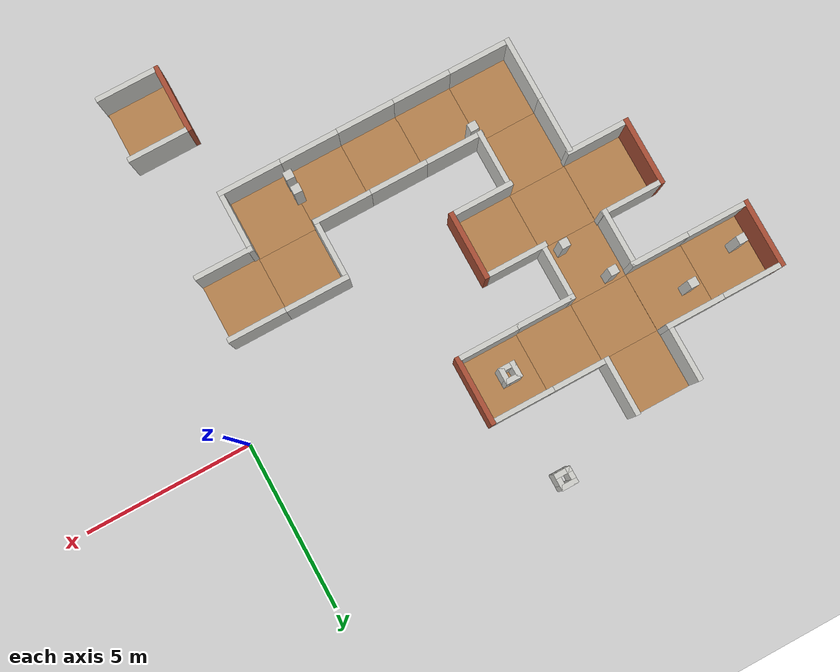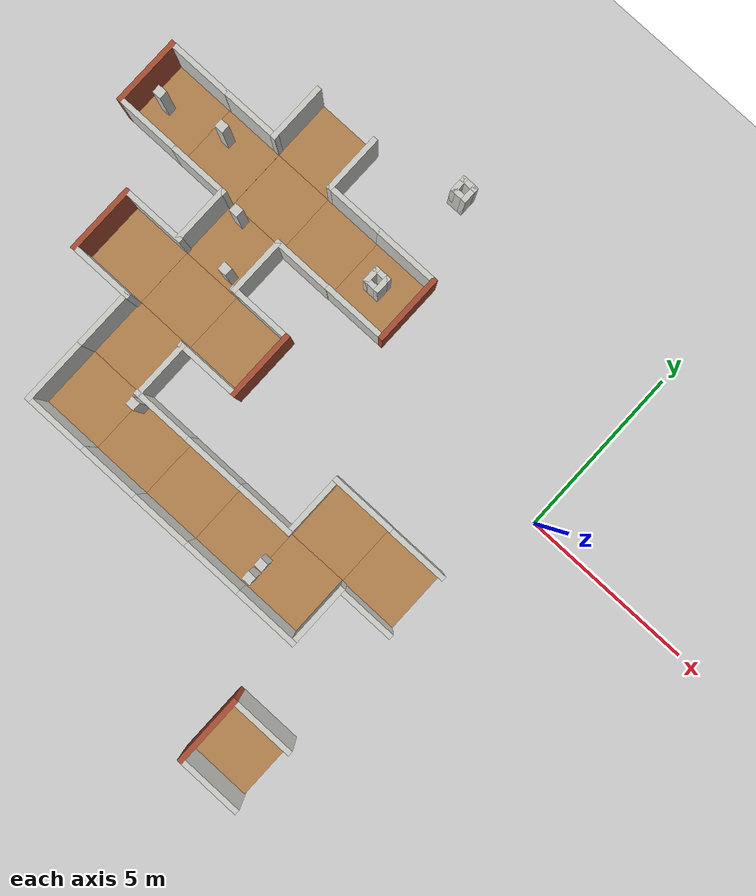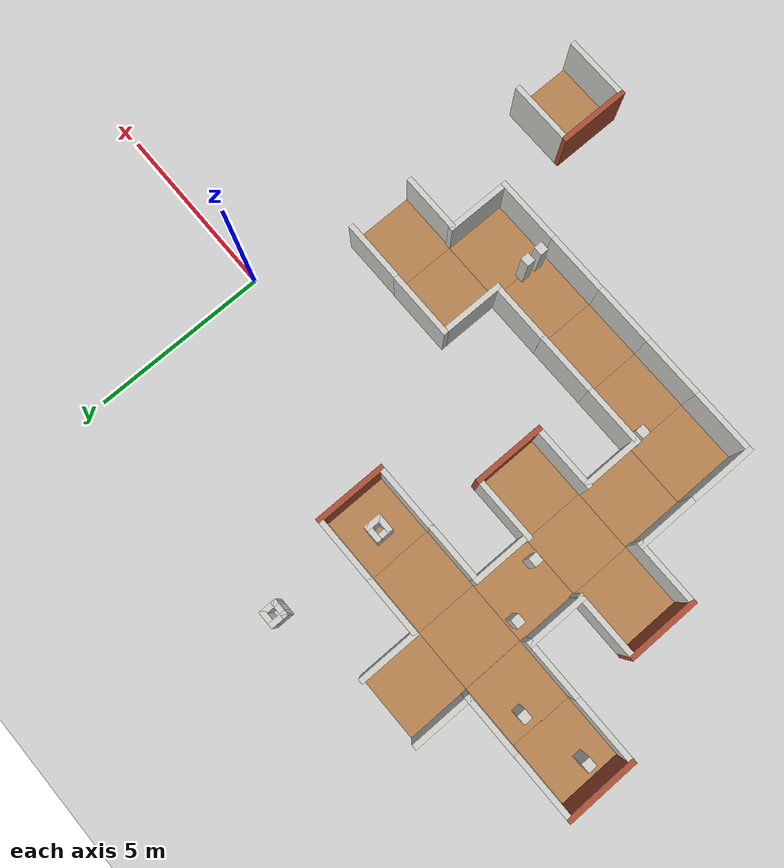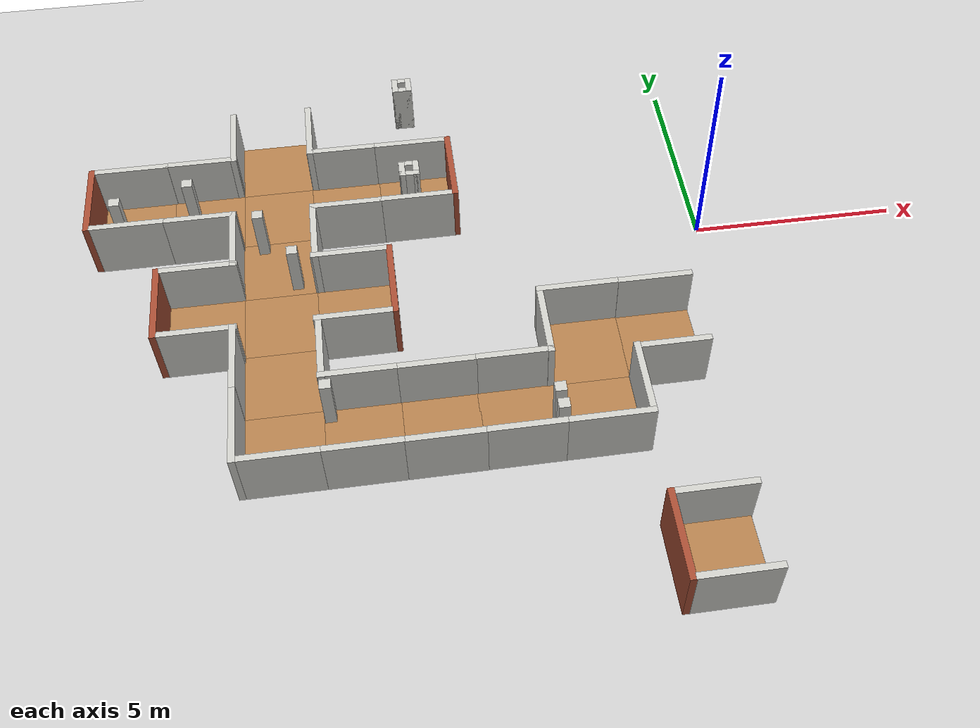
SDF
<sdf version="1.6">
 <world name="default">
  <model name="ground_plane">
   <static>1</static>
   <link name="link">
    <collision name="collision">
     <geometry><plane><normal>0 0 1</normal><size>100 100</size></plane></geometry>
     <surface><friction><ode><mu>100</mu><mu2>50</mu2></ode></friction></surface>
    </collision>
    <visual name="visual">
     <cast_shadows>0</cast_shadows>
     <geometry><plane><normal>0 0 1</normal><size>100 100</size></plane></geometry>
     <material>
      <script><uri>file://media/materials/scripts/gazebo.material</uri><name>Gazebo/Grey</name></script>
     </material>
    </visual>
   </link>
  </model>
  <model name="nerve_straight">
   <pose>-1.7845 -3.55503 0 0 0 -1.5708</pose>
   <link name="Wall_0">
    <collision name="Wall_0_Collision">
     <geometry><box><size>1.76 1.75 0.2</size></box></geometry>
     <pose>0 0 0.1 0 -0 0</pose>
    </collision>
    <visual name="Wall_0_Visual">
     <pose>0 0 0.1 0 -0 0</pose>
     <geometry><box><size>1.76 1.75 0.2</size></box></geometry>
     <material>
      <script><uri>file://media/materials/scripts/gazebo.material</uri><name>Gazebo/Wood</name></script>
      <ambient>1 0.764706 0.305882 1</ambient>
     </material>
    </visual>
    <pose>0.005 -0.002 0 0 -0 3.14159</pose>
   </link>
   <link name="Wall_2">
    <collision name="Wall_2_Collision">
     <geometry><box><size>1.75 0.15 1.5</size></box></geometry>
     <pose>0 0 0.75 0 -0 0</pose>
    </collision>
    <visual name="Wall_2_Visual">
     <pose>0 0 0.75 0 -0 0</pose>
     <geometry><box><size>1.75 0.15 1.5</size></box></geometry>
     <material>
      <script><uri>file://media/materials/scripts/gazebo.material</uri><name>Gazebo/CeilingTiled</name></script>
      <ambient>1 0.764706 0.305882 1</ambient>
     </material>
    </visual>
    <pose>-0.955 0.002 0 0 0 -1.5708</pose>
   </link>
   <link name="Wall_4">
    <collision name="Wall_4_Collision">
     <geometry><box><size>1.75 0.15 1.5</size></box></geometry>
     <pose>0 0 0.75 0 -0 0</pose>
    </collision>
    <visual name="Wall_4_Visual">
     <pose>0 0 0.75 0 -0 0</pose>
     <geometry><box><size>1.75 0.15 1.5</size></box></geometry>
     <material>
      <script><uri>file://media/materials/scripts/gazebo.material</uri><name>Gazebo/CeilingTiled</name></script>
      <ambient>1 0.764706 0.305882 1</ambient>
     </material>
    </visual>
    <pose>0.955 0.002 0 0 0 -1.5708</pose>
   </link>
   <static>1</static>
  </model>
  <model name="nerve_straight_clone_0">
   <pose>-5.29676 -5.28219 0 0 0 -1.5708</pose>
   <link name="Wall_0">
    <collision name="Wall_0_Collision">
     <geometry><box><size>1.76 1.75 0.2</size></box></geometry>
     <pose>0 0 0.1 0 -0 0</pose>
    </collision>
    <visual name="Wall_0_Visual">
     <pose>0 0 0.1 0 -0 0</pose>
     <geometry><box><size>1.76 1.75 0.2</size></box></geometry>
     <material>
      <script><uri>file://media/materials/scripts/gazebo.material</uri><name>Gazebo/Wood</name></script>
      <ambient>1 0.764706 0.305882 1</ambient>
     </material>
    </visual>
    <pose>0.005 -0.002 0 0 -0 3.14159</pose>
   </link>
   <link name="Wall_2">
    <collision name="Wall_2_Collision">
     <geometry><box><size>1.75 0.15 1.5</size></box></geometry>
     <pose>0 0 0.75 0 -0 0</pose>
    </collision>
    <visual name="Wall_2_Visual">
     <pose>0 0 0.75 0 -0 0</pose>
     <geometry><box><size>1.75 0.15 1.5</size></box></geometry>
     <material>
      <script><uri>file://media/materials/scripts/gazebo.material</uri><name>Gazebo/CeilingTiled</name></script>
      <ambient>1 0.764706 0.305882 1</ambient>
     </material>
    </visual>
    <pose>-0.955 0.002 0 0 0 -1.5708</pose>
   </link>
   <link name="Wall_4">
    <collision name="Wall_4_Collision">
     <geometry><box><size>1.75 0.15 1.5</size></box></geometry>
     <pose>0 0 0.75 0 -0 0</pose>
    </collision>
    <visual name="Wall_4_Visual">
     <pose>0 0 0.75 0 -0 0</pose>
     <geometry><box><size>1.75 0.15 1.5</size></box></geometry>
     <material>
      <script><uri>file://media/materials/scripts/gazebo.material</uri><name>Gazebo/CeilingTiled</name></script>
      <ambient>1 0.764706 0.305882 1</ambient>
     </material>
    </visual>
    <pose>0.955 0.002 0 0 0 -1.5708</pose>
   </link>
   <static>1</static>
  </model>
  <model name="nerve_straight_clone_0_clone_clone_0">
   <pose>-10.4881 3.47237 0 0 -0 3.14159</pose>
   <link name="Wall_0">
    <collision name="Wall_0_Collision">
     <geometry><box><size>1.76 1.75 0.2</size></box></geometry>
     <pose>0 0 0.1 0 -0 0</pose>
    </collision>
    <visual name="Wall_0_Visual">
     <pose>0 0 0.1 0 -0 0</pose>
     <geometry><box><size>1.76 1.75 0.2</size></box></geometry>
     <material>
      <script><uri>file://media/materials/scripts/gazebo.material</uri><name>Gazebo/Wood</name></script>
      <ambient>1 0.764706 0.305882 1</ambient>
     </material>
    </visual>
    <pose>0.005 -0.002 0 0 -0 3.14159</pose>
   </link>
   <link name="Wall_2">
    <collision name="Wall_2_Collision">
     <geometry><box><size>1.75 0.15 1.5</size></box></geometry>
     <pose>0 0 0.75 0 -0 0</pose>
    </collision>
    <visual name="Wall_2_Visual">
     <pose>0 0 0.75 0 -0 0</pose>
     <geometry><box><size>1.75 0.15 1.5</size></box></geometry>
     <material>
      <script><uri>file://media/materials/scripts/gazebo.material</uri><name>Gazebo/CeilingTiled</name></script>
      <ambient>1 0.764706 0.305882 1</ambient>
     </material>
    </visual>
    <pose>-0.955 0.002 0 0 0 -1.5708</pose>
   </link>
   <link name="Wall_4">
    <collision name="Wall_4_Collision">
     <geometry><box><size>1.75 0.15 1.5</size></box></geometry>
     <pose>0 0 0.75 0 -0 0</pose>
    </collision>
    <visual name="Wall_4_Visual">
     <pose>0 0 0.75 0 -0 0</pose>
     <geometry><box><size>1.75 0.15 1.5</size></box></geometry>
     <material>
      <script><uri>file://media/materials/scripts/gazebo.material</uri><name>Gazebo/CeilingTiled</name></script>
      <ambient>1 0.764706 0.305882 1</ambient>
     </material>
    </visual>
    <pose>0.955 0.002 0 0 0 -1.5708</pose>
   </link>
   <static>1</static>
  </model>
  <model name="nerve_end_clone_clone_clone">
   <pose>-1.78823 -9.18731 0 0 -0 1.5708</pose>
   <link name="Wall_0">
    <collision name="Wall_0_Collision">
     <geometry><box><size>1.76 1.75 0.2</size></box></geometry>
     <pose>0 0 0.1 0 -0 0</pose>
    </collision>
    <visual name="Wall_0_Visual">
     <pose>0 0 0.1 0 -0 0</pose>
     <geometry><box><size>1.76 1.75 0.2</size></box></geometry>
     <material>
      <script><uri>file://media/materials/scripts/gazebo.material</uri><name>Gazebo/Wood</name></script>
      <ambient>1 0.764706 0.305882 1</ambient>
     </material>
    </visual>
    <pose>-0.009 -0.064 0 0 -0 0</pose>
   </link>
   <link name="Wall_2">
    <collision name="Wall_2_Collision">
     <geometry><box><size>1.8 0.15 1.5</size></box></geometry>
     <pose>0 0 0.75 0 -0 0</pose>
    </collision>
    <visual name="Wall_2_Visual">
     <pose>0 0 0.75 0 -0 0</pose>
     <geometry><box><size>1.8 0.15 1.5</size></box></geometry>
     <material>
      <script><uri>file://media/materials/scripts/gazebo.material</uri><name>Gazebo/CeilingTiled</name></script>
      <ambient>1 0.764706 0.305882 1</ambient>
     </material>
    </visual>
    <pose>-0.95 -0.065 0 0 0 -1.5708</pose>
   </link>
   <link name="Wall_4">
    <collision name="Wall_4_Collision">
     <geometry><box><size>1.8 0.15 1.5</size></box></geometry>
     <pose>0 0 0.75 0 -0 0</pose>
    </collision>
    <visual name="Wall_4_Visual">
     <pose>0 0 0.75 0 -0 0</pose>
     <geometry><box><size>1.8 0.15 1.5</size></box></geometry>
     <material>
      <script><uri>file://media/materials/scripts/gazebo.material</uri><name>Gazebo/CeilingTiled</name></script>
      <ambient>1 0.764706 0.305882 1</ambient>
     </material>
    </visual>
    <pose>0.95 -0.065 0 0 0 -1.5708</pose>
   </link>
   <link name="Wall_6">
    <collision name="Wall_6_Collision">
     <geometry><box><size>2.05 0.15 1.5</size></box></geometry>
     <pose>0 0 0.75 0 -0 0</pose>
    </collision>
    <visual name="Wall_6_Visual">
     <pose>0 0 0.75 0 -0 0</pose>
     <geometry><box><size>2.05 0.15 1.5</size></box></geometry>
     <material>
      <script><uri>file://media/materials/scripts/gazebo.material</uri><name>Gazebo/Bricks</name></script>
      <ambient>0.996078 0.47451 0.0196078 1</ambient>
     </material>
    </visual>
    <pose>0 0.89 0 0 -0 0</pose>
   </link>
   <static>1</static>
  </model>
  <model name="nerve_corner_clone_clone">
   <pose>-3.47853 -5.36113 0 0 0 -3.14159</pose>
   <link name="Wall_0">
    <collision name="Wall_0_Collision">
     <geometry><box><size>1.76 1.75 0.2</size></box></geometry>
     <pose>0 0 0.1 0 -0 0</pose>
    </collision>
    <visual name="Wall_0_Visual">
     <pose>0 0 0.1 0 -0 0</pose>
     <geometry><box><size>1.76 1.75 0.2</size></box></geometry>
     <material>
      <script><uri>file://media/materials/scripts/gazebo.material</uri><name>Gazebo/Wood</name></script>
      <ambient>1 0.764706 0.305882 1</ambient>
     </material>
    </visual>
    <pose>0.077507 -0.077007 0 0 -0 3.14159</pose>
   </link>
   <link name="Wall_2">
    <collision name="Wall_2_Collision">
     <geometry><box><size>1.75 0.15 1.5</size></box></geometry>
     <pose>0 0 0.75 0 -0 0</pose>
    </collision>
    <visual name="Wall_2_Visual">
     <pose>0 0 0.75 0 -0 0</pose>
     <geometry><box><size>1.75 0.15 1.5</size></box></geometry>
     <material>
      <script><uri>file://media/materials/scripts/gazebo.material</uri><name>Gazebo/CeilingTiled</name></script>
      <ambient>1 0.764706 0.305882 1</ambient>
     </material>
    </visual>
    <pose>-0.882493 -0.073007 0 0 0 -1.5708</pose>
   </link>
   <link name="Wall_4">
    <collision name="Wall_4_Collision">
     <geometry><box><size>1.91042 0.15 1.5</size></box></geometry>
     <pose>0 0 0.75 0 -0 0</pose>
    </collision>
    <visual name="Wall_4_Visual">
     <pose>0 0 0.75 0 -0 0</pose>
     <geometry><box><size>1.91042 0.15 1.5</size></box></geometry>
     <material>
      <script><uri>file://media/materials/scripts/gazebo.material</uri><name>Gazebo/CeilingTiled</name></script>
      <ambient>1 0.764706 0.305882 1</ambient>
     </material>
    </visual>
    <pose>-0.002284 0.876825 0 0 -0 3.1414</pose>
   </link>
   <static>1</static>
  </model>
  <model name="nerve_end_clone_clone_clone_1">
   <pose>-6.94342 1.72067 0 0 0 -1.57079</pose>
   <link name="Wall_0">
    <collision name="Wall_0_Collision">
     <geometry><box><size>1.76 1.75 0.2</size></box></geometry>
     <pose>0 0 0.1 0 -0 0</pose>
    </collision>
    <visual name="Wall_0_Visual">
     <pose>0 0 0.1 0 -0 0</pose>
     <geometry><box><size>1.76 1.75 0.2</size></box></geometry>
     <material>
      <script><uri>file://media/materials/scripts/gazebo.material</uri><name>Gazebo/Wood</name></script>
      <ambient>1 0.764706 0.305882 1</ambient>
     </material>
    </visual>
    <pose>-0.009 -0.064 0 0 -0 0</pose>
   </link>
   <link name="Wall_2">
    <collision name="Wall_2_Collision">
     <geometry><box><size>1.8 0.15 1.5</size></box></geometry>
     <pose>0 0 0.75 0 -0 0</pose>
    </collision>
    <visual name="Wall_2_Visual">
     <pose>0 0 0.75 0 -0 0</pose>
     <geometry><box><size>1.8 0.15 1.5</size></box></geometry>
     <material>
      <script><uri>file://media/materials/scripts/gazebo.material</uri><name>Gazebo/CeilingTiled</name></script>
      <ambient>1 0.764706 0.305882 1</ambient>
     </material>
    </visual>
    <pose>-0.95 -0.065 0 0 0 -1.5708</pose>
   </link>
   <link name="Wall_4">
    <collision name="Wall_4_Collision">
     <geometry><box><size>1.8 0.15 1.5</size></box></geometry>
     <pose>0 0 0.75 0 -0 0</pose>
    </collision>
    <visual name="Wall_4_Visual">
     <pose>0 0 0.75 0 -0 0</pose>
     <geometry><box><size>1.8 0.15 1.5</size></box></geometry>
     <material>
      <script><uri>file://media/materials/scripts/gazebo.material</uri><name>Gazebo/CeilingTiled</name></script>
      <ambient>1 0.764706 0.305882 1</ambient>
     </material>
    </visual>
    <pose>0.95 -0.065 0 0 0 -1.5708</pose>
   </link>
   <link name="Wall_6">
    <collision name="Wall_6_Collision">
     <geometry><box><size>2.05 0.15 1.5</size></box></geometry>
     <pose>0 0 0.75 0 -0 0</pose>
    </collision>
    <visual name="Wall_6_Visual">
     <pose>0 0 0.75 0 -0 0</pose>
     <geometry><box><size>2.05 0.15 1.5</size></box></geometry>
     <material>
      <script><uri>file://media/materials/scripts/gazebo.material</uri><name>Gazebo/Bricks</name></script>
      <ambient>0.996078 0.47451 0.0196078 1</ambient>
     </material>
    </visual>
    <pose>0 0.89 0 0 -0 0</pose>
   </link>
   <static>1</static>
  </model>
  <model name="nerve_end_clone_clone_clone_2">
   <pose>-14.0282 1.72032 0 0 -0 1.5708</pose>
   <link name="Wall_0">
    <collision name="Wall_0_Collision">
     <geometry><box><size>1.76 1.75 0.2</size></box></geometry>
     <pose>0 0 0.1 0 -0 0</pose>
    </collision>
    <visual name="Wall_0_Visual">
     <pose>0 0 0.1 0 -0 0</pose>
     <geometry><box><size>1.76 1.75 0.2</size></box></geometry>
     <material>
      <script><uri>file://media/materials/scripts/gazebo.material</uri><name>Gazebo/Wood</name></script>
      <ambient>1 0.764706 0.305882 1</ambient>
     </material>
    </visual>
    <pose>-0.009 -0.064 0 0 -0 0</pose>
   </link>
   <link name="Wall_2">
    <collision name="Wall_2_Collision">
     <geometry><box><size>1.8 0.15 1.5</size></box></geometry>
     <pose>0 0 0.75 0 -0 0</pose>
    </collision>
    <visual name="Wall_2_Visual">
     <pose>0 0 0.75 0 -0 0</pose>
     <geometry><box><size>1.8 0.15 1.5</size></box></geometry>
     <material>
      <script><uri>file://media/materials/scripts/gazebo.material</uri><name>Gazebo/CeilingTiled</name></script>
      <ambient>1 0.764706 0.305882 1</ambient>
     </material>
    </visual>
    <pose>-0.95 -0.065 0 0 0 -1.5708</pose>
   </link>
   <link name="Wall_4">
    <collision name="Wall_4_Collision">
     <geometry><box><size>1.8 0.15 1.5</size></box></geometry>
     <pose>0 0 0.75 0 -0 0</pose>
    </collision>
    <visual name="Wall_4_Visual">
     <pose>0 0 0.75 0 -0 0</pose>
     <geometry><box><size>1.8 0.15 1.5</size></box></geometry>
     <material>
      <script><uri>file://media/materials/scripts/gazebo.material</uri><name>Gazebo/CeilingTiled</name></script>
      <ambient>1 0.764706 0.305882 1</ambient>
     </material>
    </visual>
    <pose>0.95 -0.065 0 0 0 -1.5708</pose>
   </link>
   <link name="Wall_6">
    <collision name="Wall_6_Collision">
     <geometry><box><size>2.05 0.15 1.5</size></box></geometry>
     <pose>0 0 0.75 0 -0 0</pose>
    </collision>
    <visual name="Wall_6_Visual">
     <pose>0 0 0.75 0 -0 0</pose>
     <geometry><box><size>2.05 0.15 1.5</size></box></geometry>
     <material>
      <script><uri>file://media/materials/scripts/gazebo.material</uri><name>Gazebo/Bricks</name></script>
      <ambient>0.996078 0.47451 0.0196078 1</ambient>
     </material>
    </visual>
    <pose>0 0.89 0 0 -0 0</pose>
   </link>
   <static>1</static>
  </model>
  <model name="nerve_straight_clone_0_clone_clone_0_clone">
   <pose>-10.4958 -0.031806 0 0 -0 3.14159</pose>
   <link name="Wall_0">
    <collision name="Wall_0_Collision">
     <geometry><box><size>1.76 1.75 0.2</size></box></geometry>
     <pose>0 0 0.1 0 -0 0</pose>
    </collision>
    <visual name="Wall_0_Visual">
     <pose>0 0 0.1 0 -0 0</pose>
     <geometry><box><size>1.76 1.75 0.2</size></box></geometry>
     <material>
      <script><uri>file://media/materials/scripts/gazebo.material</uri><name>Gazebo/Wood</name></script>
      <ambient>1 0.764706 0.305882 1</ambient>
     </material>
    </visual>
    <pose>0.005 -0.002 0 0 -0 3.14159</pose>
   </link>
   <link name="Wall_2">
    <collision name="Wall_2_Collision">
     <geometry><box><size>1.75 0.15 1.5</size></box></geometry>
     <pose>0 0 0.75 0 -0 0</pose>
    </collision>
    <visual name="Wall_2_Visual">
     <pose>0 0 0.75 0 -0 0</pose>
     <geometry><box><size>1.75 0.15 1.5</size></box></geometry>
     <material>
      <script><uri>file://media/materials/scripts/gazebo.material</uri><name>Gazebo/CeilingTiled</name></script>
      <ambient>1 0.764706 0.305882 1</ambient>
     </material>
    </visual>
    <pose>-0.955 0.002 0 0 0 -1.5708</pose>
   </link>
   <link name="Wall_4">
    <collision name="Wall_4_Collision">
     <geometry><box><size>1.75 0.15 1.5</size></box></geometry>
     <pose>0 0 0.75 0 -0 0</pose>
    </collision>
    <visual name="Wall_4_Visual">
     <pose>0 0 0.75 0 -0 0</pose>
     <geometry><box><size>1.75 0.15 1.5</size></box></geometry>
     <material>
      <script><uri>file://media/materials/scripts/gazebo.material</uri><name>Gazebo/CeilingTiled</name></script>
      <ambient>1 0.764706 0.305882 1</ambient>
     </material>
    </visual>
    <pose>0.955 0.002 0 0 0 -1.5708</pose>
   </link>
   <static>1</static>
  </model>
  <model name="nerve_platform">
   <pose>-10.4862 1.72399 0 0 -0 0</pose>
   <link name="Wall_6">
    <collision name="Wall_6_Collision">
     <geometry><box><size>1.76 1.75 0.2</size></box></geometry>
     <pose>0 0 0.1 0 -0 0</pose>
    </collision>
    <visual name="Wall_6_Visual">
     <pose>0 0 0.1 0 -0 0</pose>
     <geometry><box><size>1.76 1.75 0.2</size></box></geometry>
     <material>
      <script><uri>file://media/materials/scripts/gazebo.material</uri><name>Gazebo/Wood</name></script>
      <ambient>1 0.764706 0.305882 1</ambient>
     </material>
    </visual>
    <pose>0 0 0 0 -0 1.5708</pose>
   </link>
   <static>1</static>
  </model>
  <model name="nerve_platform_clone">
   <pose>-10.4995 -1.78106 0 0 -0 0</pose>
   <link name="Wall_6">
    <collision name="Wall_6_Collision">
     <geometry><box><size>1.76 1.75 0.2</size></box></geometry>
     <pose>0 0 0.1 0 -0 0</pose>
    </collision>
    <visual name="Wall_6_Visual">
     <pose>0 0 0.1 0 -0 0</pose>
     <geometry><box><size>1.76 1.75 0.2</size></box></geometry>
     <material>
      <script><uri>file://media/materials/scripts/gazebo.material</uri><name>Gazebo/Wood</name></script>
      <ambient>1 0.764706 0.305882 1</ambient>
     </material>
    </visual>
    <pose>0 0 0 0 -0 1.5708</pose>
   </link>
   <static>1</static>
  </model>
  <model name="nerve_end_clone_clone_clone_1_clone">
   <pose>-8.68908 -1.78199 0 0 0 -1.57079</pose>
   <link name="Wall_0">
    <collision name="Wall_0_Collision">
     <geometry><box><size>1.76 1.75 0.2</size></box></geometry>
     <pose>0 0 0.1 0 -0 0</pose>
    </collision>
    <visual name="Wall_0_Visual">
     <pose>0 0 0.1 0 -0 0</pose>
     <geometry><box><size>1.76 1.75 0.2</size></box></geometry>
     <material>
      <script><uri>file://media/materials/scripts/gazebo.material</uri><name>Gazebo/Wood</name></script>
      <ambient>1 0.764706 0.305882 1</ambient>
     </material>
    </visual>
    <pose>-0.009 -0.064 0 0 -0 0</pose>
   </link>
   <link name="Wall_2">
    <collision name="Wall_2_Collision">
     <geometry><box><size>1.8 0.15 1.5</size></box></geometry>
     <pose>0 0 0.75 0 -0 0</pose>
    </collision>
    <visual name="Wall_2_Visual">
     <pose>0 0 0.75 0 -0 0</pose>
     <geometry><box><size>1.8 0.15 1.5</size></box></geometry>
     <material>
      <script><uri>file://media/materials/scripts/gazebo.material</uri><name>Gazebo/CeilingTiled</name></script>
      <ambient>1 0.764706 0.305882 1</ambient>
     </material>
    </visual>
    <pose>-0.95 -0.065 0 0 0 -1.5708</pose>
   </link>
   <link name="Wall_4">
    <collision name="Wall_4_Collision">
     <geometry><box><size>1.8 0.15 1.5</size></box></geometry>
     <pose>0 0 0.75 0 -0 0</pose>
    </collision>
    <visual name="Wall_4_Visual">
     <pose>0 0 0.75 0 -0 0</pose>
     <geometry><box><size>1.8 0.15 1.5</size></box></geometry>
     <material>
      <script><uri>file://media/materials/scripts/gazebo.material</uri><name>Gazebo/CeilingTiled</name></script>
      <ambient>1 0.764706 0.305882 1</ambient>
     </material>
    </visual>
    <pose>0.95 -0.065 0 0 0 -1.5708</pose>
   </link>
   <link name="Wall_6">
    <collision name="Wall_6_Collision">
     <geometry><box><size>2.05 0.15 1.5</size></box></geometry>
     <pose>0 0 0.75 0 -0 0</pose>
    </collision>
    <visual name="Wall_6_Visual">
     <pose>0 0 0.75 0 -0 0</pose>
     <geometry><box><size>2.05 0.15 1.5</size></box></geometry>
     <material>
      <script><uri>file://media/materials/scripts/gazebo.material</uri><name>Gazebo/Bricks</name></script>
      <ambient>0.996078 0.47451 0.0196078 1</ambient>
     </material>
    </visual>
    <pose>0 0.89 0 0 -0 0</pose>
   </link>
   <static>1</static>
  </model>
  <model name="nerve_end_clone_clone_clone_2_clone">
   <pose>-12.3141 -1.78447 0 0 -0 1.5708</pose>
   <link name="Wall_0">
    <collision name="Wall_0_Collision">
     <geometry><box><size>1.76 1.75 0.2</size></box></geometry>
     <pose>0 0 0.1 0 -0 0</pose>
    </collision>
    <visual name="Wall_0_Visual">
     <pose>0 0 0.1 0 -0 0</pose>
     <geometry><box><size>1.76 1.75 0.2</size></box></geometry>
     <material>
      <script><uri>file://media/materials/scripts/gazebo.material</uri><name>Gazebo/Wood</name></script>
      <ambient>1 0.764706 0.305882 1</ambient>
     </material>
    </visual>
    <pose>-0.009 -0.064 0 0 -0 0</pose>
   </link>
   <link name="Wall_2">
    <collision name="Wall_2_Collision">
     <geometry><box><size>1.8 0.15 1.5</size></box></geometry>
     <pose>0 0 0.75 0 -0 0</pose>
    </collision>
    <visual name="Wall_2_Visual">
     <pose>0 0 0.75 0 -0 0</pose>
     <geometry><box><size>1.8 0.15 1.5</size></box></geometry>
     <material>
      <script><uri>file://media/materials/scripts/gazebo.material</uri><name>Gazebo/CeilingTiled</name></script>
      <ambient>1 0.764706 0.305882 1</ambient>
     </material>
    </visual>
    <pose>-0.95 -0.065 0 0 0 -1.5708</pose>
   </link>
   <link name="Wall_4">
    <collision name="Wall_4_Collision">
     <geometry><box><size>1.8 0.15 1.5</size></box></geometry>
     <pose>0 0 0.75 0 -0 0</pose>
    </collision>
    <visual name="Wall_4_Visual">
     <pose>0 0 0.75 0 -0 0</pose>
     <geometry><box><size>1.8 0.15 1.5</size></box></geometry>
     <material>
      <script><uri>file://media/materials/scripts/gazebo.material</uri><name>Gazebo/CeilingTiled</name></script>
      <ambient>1 0.764706 0.305882 1</ambient>
     </material>
    </visual>
    <pose>0.95 -0.065 0 0 0 -1.5708</pose>
   </link>
   <link name="Wall_6">
    <collision name="Wall_6_Collision">
     <geometry><box><size>2.05 0.15 1.5</size></box></geometry>
     <pose>0 0 0.75 0 -0 0</pose>
    </collision>
    <visual name="Wall_6_Visual">
     <pose>0 0 0.75 0 -0 0</pose>
     <geometry><box><size>2.05 0.15 1.5</size></box></geometry>
     <material>
      <script><uri>file://media/materials/scripts/gazebo.material</uri><name>Gazebo/Bricks</name></script>
      <ambient>0.996078 0.47451 0.0196078 1</ambient>
     </material>
    </visual>
    <pose>0 0.89 0 0 -0 0</pose>
   </link>
   <static>1</static>
  </model>
  <model name="nerve_straight_clone_0_clone_clone_1">
   <pose>-10.499 -3.53303 0 0 -0 3.14159</pose>
   <link name="Wall_0">
    <collision name="Wall_0_Collision">
     <geometry><box><size>1.76 1.75 0.2</size></box></geometry>
     <pose>0 0 0.1 0 -0 0</pose>
    </collision>
    <visual name="Wall_0_Visual">
     <pose>0 0 0.1 0 -0 0</pose>
     <geometry><box><size>1.76 1.75 0.2</size></box></geometry>
     <material>
      <script><uri>file://media/materials/scripts/gazebo.material</uri><name>Gazebo/Wood</name></script>
      <ambient>1 0.764706 0.305882 1</ambient>
     </material>
    </visual>
    <pose>0.005 -0.002 0 0 -0 3.14159</pose>
   </link>
   <link name="Wall_2">
    <collision name="Wall_2_Collision">
     <geometry><box><size>1.75 0.15 1.5</size></box></geometry>
     <pose>0 0 0.75 0 -0 0</pose>
    </collision>
    <visual name="Wall_2_Visual">
     <pose>0 0 0.75 0 -0 0</pose>
     <geometry><box><size>1.75 0.15 1.5</size></box></geometry>
     <material>
      <script><uri>file://media/materials/scripts/gazebo.material</uri><name>Gazebo/CeilingTiled</name></script>
      <ambient>1 0.764706 0.305882 1</ambient>
     </material>
    </visual>
    <pose>-0.955 0.002 0 0 0 -1.5708</pose>
   </link>
   <link name="Wall_4">
    <collision name="Wall_4_Collision">
     <geometry><box><size>1.75 0.15 1.5</size></box></geometry>
     <pose>0 0 0.75 0 -0 0</pose>
    </collision>
    <visual name="Wall_4_Visual">
     <pose>0 0 0.75 0 -0 0</pose>
     <geometry><box><size>1.75 0.15 1.5</size></box></geometry>
     <material>
      <script><uri>file://media/materials/scripts/gazebo.material</uri><name>Gazebo/CeilingTiled</name></script>
      <ambient>1 0.764706 0.305882 1</ambient>
     </material>
    </visual>
    <pose>0.955 0.002 0 0 0 -1.5708</pose>
   </link>
   <static>1</static>
  </model>
  <model name="nerve_corner_clone_clone_clone">
   <pose>-10.5801 -5.35805 0 0 -0 1.5708</pose>
   <link name="Wall_0">
    <collision name="Wall_0_Collision">
     <geometry><box><size>1.76 1.75 0.2</size></box></geometry>
     <pose>0 0 0.1 0 -0 0</pose>
    </collision>
    <visual name="Wall_0_Visual">
     <pose>0 0 0.1 0 -0 0</pose>
     <geometry><box><size>1.76 1.75 0.2</size></box></geometry>
     <material>
      <script><uri>file://media/materials/scripts/gazebo.material</uri><name>Gazebo/Wood</name></script>
      <ambient>1 0.764706 0.305882 1</ambient>
     </material>
    </visual>
    <pose>0.077507 -0.077007 0 0 -0 3.14159</pose>
   </link>
   <link name="Wall_2">
    <collision name="Wall_2_Collision">
     <geometry><box><size>1.75 0.15 1.5</size></box></geometry>
     <pose>0 0 0.75 0 -0 0</pose>
    </collision>
    <visual name="Wall_2_Visual">
     <pose>0 0 0.75 0 -0 0</pose>
     <geometry><box><size>1.75 0.15 1.5</size></box></geometry>
     <material>
      <script><uri>file://media/materials/scripts/gazebo.material</uri><name>Gazebo/CeilingTiled</name></script>
      <ambient>1 0.764706 0.305882 1</ambient>
     </material>
    </visual>
    <pose>-0.882493 -0.073007 0 0 0 -1.5708</pose>
   </link>
   <link name="Wall_4">
    <collision name="Wall_4_Collision">
     <geometry><box><size>1.91042 0.15 1.5</size></box></geometry>
     <pose>0 0 0.75 0 -0 0</pose>
    </collision>
    <visual name="Wall_4_Visual">
     <pose>0 0 0.75 0 -0 0</pose>
     <geometry><box><size>1.91042 0.15 1.5</size></box></geometry>
     <material>
      <script><uri>file://media/materials/scripts/gazebo.material</uri><name>Gazebo/CeilingTiled</name></script>
      <ambient>1 0.764706 0.305882 1</ambient>
     </material>
    </visual>
    <pose>-0.002284 0.876825 0 0 -0 3.1414</pose>
   </link>
   <static>1</static>
  </model>
  <model name="nerve_straight_clone_0_clone_2">
   <pose>-8.76094 -5.28601 0 0 0 -1.5708</pose>
   <link name="Wall_0">
    <collision name="Wall_0_Collision">
     <geometry><box><size>1.76 1.75 0.2</size></box></geometry>
     <pose>0 0 0.1 0 -0 0</pose>
    </collision>
    <visual name="Wall_0_Visual">
     <pose>0 0 0.1 0 -0 0</pose>
     <geometry><box><size>1.76 1.75 0.2</size></box></geometry>
     <material>
      <script><uri>file://media/materials/scripts/gazebo.material</uri><name>Gazebo/Wood</name></script>
      <ambient>1 0.764706 0.305882 1</ambient>
     </material>
    </visual>
    <pose>0.005 -0.002 0 0 -0 3.14159</pose>
   </link>
   <link name="Wall_2">
    <collision name="Wall_2_Collision">
     <geometry><box><size>1.75 0.15 1.5</size></box></geometry>
     <pose>0 0 0.75 0 -0 0</pose>
    </collision>
    <visual name="Wall_2_Visual">
     <pose>0 0 0.75 0 -0 0</pose>
     <geometry><box><size>1.75 0.15 1.5</size></box></geometry>
     <material>
      <script><uri>file://media/materials/scripts/gazebo.material</uri><name>Gazebo/CeilingTiled</name></script>
      <ambient>1 0.764706 0.305882 1</ambient>
     </material>
    </visual>
    <pose>-0.955 0.002 0 0 0 -1.5708</pose>
   </link>
   <link name="Wall_4">
    <collision name="Wall_4_Collision">
     <geometry><box><size>1.75 0.15 1.5</size></box></geometry>
     <pose>0 0 0.75 0 -0 0</pose>
    </collision>
    <visual name="Wall_4_Visual">
     <pose>0 0 0.75 0 -0 0</pose>
     <geometry><box><size>1.75 0.15 1.5</size></box></geometry>
     <material>
      <script><uri>file://media/materials/scripts/gazebo.material</uri><name>Gazebo/CeilingTiled</name></script>
      <ambient>1 0.764706 0.305882 1</ambient>
     </material>
    </visual>
    <pose>0.955 0.002 0 0 0 -1.5708</pose>
   </link>
   <static>1</static>
  </model>
  <model name="nerve_straight_clone_0_clone_3">
   <pose>-7.02526 -5.28698 0 0 0 -1.5708</pose>
   <link name="Wall_0">
    <collision name="Wall_0_Collision">
     <geometry><box><size>1.76 1.75 0.2</size></box></geometry>
     <pose>0 0 0.1 0 -0 0</pose>
    </collision>
    <visual name="Wall_0_Visual">
     <pose>0 0 0.1 0 -0 0</pose>
     <geometry><box><size>1.76 1.75 0.2</size></box></geometry>
     <material>
      <script><uri>file://media/materials/scripts/gazebo.material</uri><name>Gazebo/Wood</name></script>
      <ambient>1 0.764706 0.305882 1</ambient>
     </material>
    </visual>
    <pose>0.005 -0.002 0 0 -0 3.14159</pose>
   </link>
   <link name="Wall_2">
    <collision name="Wall_2_Collision">
     <geometry><box><size>1.75 0.15 1.5</size></box></geometry>
     <pose>0 0 0.75 0 -0 0</pose>
    </collision>
    <visual name="Wall_2_Visual">
     <pose>0 0 0.75 0 -0 0</pose>
     <geometry><box><size>1.75 0.15 1.5</size></box></geometry>
     <material>
      <script><uri>file://media/materials/scripts/gazebo.material</uri><name>Gazebo/CeilingTiled</name></script>
      <ambient>1 0.764706 0.305882 1</ambient>
     </material>
    </visual>
    <pose>-0.955 0.002 0 0 0 -1.5708</pose>
   </link>
   <link name="Wall_4">
    <collision name="Wall_4_Collision">
     <geometry><box><size>1.75 0.15 1.5</size></box></geometry>
     <pose>0 0 0.75 0 -0 0</pose>
    </collision>
    <visual name="Wall_4_Visual">
     <pose>0 0 0.75 0 -0 0</pose>
     <geometry><box><size>1.75 0.15 1.5</size></box></geometry>
     <material>
      <script><uri>file://media/materials/scripts/gazebo.material</uri><name>Gazebo/CeilingTiled</name></script>
      <ambient>1 0.764706 0.305882 1</ambient>
     </material>
    </visual>
    <pose>0.955 0.002 0 0 0 -1.5708</pose>
   </link>
   <static>1</static>
  </model>
  <model name="nerve_straight_clone_0_clone_4">
   <pose>-8.74098 1.71685 0 0 0 -1.5708</pose>
   <link name="Wall_0">
    <collision name="Wall_0_Collision">
     <geometry><box><size>1.76 1.75 0.2</size></box></geometry>
     <pose>0 0 0.1 0 -0 0</pose>
    </collision>
    <visual name="Wall_0_Visual">
     <pose>0 0 0.1 0 -0 0</pose>
     <geometry><box><size>1.76 1.75 0.2</size></box></geometry>
     <material>
      <script><uri>file://media/materials/scripts/gazebo.material</uri><name>Gazebo/Wood</name></script>
      <ambient>1 0.764706 0.305882 1</ambient>
     </material>
    </visual>
    <pose>0.005 -0.002 0 0 -0 3.14159</pose>
   </link>
   <link name="Wall_2">
    <collision name="Wall_2_Collision">
     <geometry><box><size>1.75 0.15 1.5</size></box></geometry>
     <pose>0 0 0.75 0 -0 0</pose>
    </collision>
    <visual name="Wall_2_Visual">
     <pose>0 0 0.75 0 -0 0</pose>
     <geometry><box><size>1.75 0.15 1.5</size></box></geometry>
     <material>
      <script><uri>file://media/materials/scripts/gazebo.material</uri><name>Gazebo/CeilingTiled</name></script>
      <ambient>1 0.764706 0.305882 1</ambient>
     </material>
    </visual>
    <pose>-0.955 0.002 0 0 0 -1.5708</pose>
   </link>
   <link name="Wall_4">
    <collision name="Wall_4_Collision">
     <geometry><box><size>1.75 0.15 1.5</size></box></geometry>
     <pose>0 0 0.75 0 -0 0</pose>
    </collision>
    <visual name="Wall_4_Visual">
     <pose>0 0 0.75 0 -0 0</pose>
     <geometry><box><size>1.75 0.15 1.5</size></box></geometry>
     <material>
      <script><uri>file://media/materials/scripts/gazebo.material</uri><name>Gazebo/CeilingTiled</name></script>
      <ambient>1 0.764706 0.305882 1</ambient>
     </material>
    </visual>
    <pose>0.955 0.002 0 0 0 -1.5708</pose>
   </link>
   <static>1</static>
  </model>
  <model name="nerve_straight_clone_0_clone_5">
   <pose>-12.2356 1.72214 0 0 0 -1.5708</pose>
   <link name="Wall_0">
    <collision name="Wall_0_Collision">
     <geometry><box><size>1.76 1.75 0.2</size></box></geometry>
     <pose>0 0 0.1 0 -0 0</pose>
    </collision>
    <visual name="Wall_0_Visual">
     <pose>0 0 0.1 0 -0 0</pose>
     <geometry><box><size>1.76 1.75 0.2</size></box></geometry>
     <material>
      <script><uri>file://media/materials/scripts/gazebo.material</uri><name>Gazebo/Wood</name></script>
      <ambient>1 0.764706 0.305882 1</ambient>
     </material>
    </visual>
    <pose>0.005 -0.002 0 0 -0 3.14159</pose>
   </link>
   <link name="Wall_2">
    <collision name="Wall_2_Collision">
     <geometry><box><size>1.75 0.15 1.5</size></box></geometry>
     <pose>0 0 0.75 0 -0 0</pose>
    </collision>
    <visual name="Wall_2_Visual">
     <pose>0 0 0.75 0 -0 0</pose>
     <geometry><box><size>1.75 0.15 1.5</size></box></geometry>
     <material>
      <script><uri>file://media/materials/scripts/gazebo.material</uri><name>Gazebo/CeilingTiled</name></script>
      <ambient>1 0.764706 0.305882 1</ambient>
     </material>
    </visual>
    <pose>-0.955 0.002 0 0 0 -1.5708</pose>
   </link>
   <link name="Wall_4">
    <collision name="Wall_4_Collision">
     <geometry><box><size>1.75 0.15 1.5</size></box></geometry>
     <pose>0 0 0.75 0 -0 0</pose>
    </collision>
    <visual name="Wall_4_Visual">
     <pose>0 0 0.75 0 -0 0</pose>
     <geometry><box><size>1.75 0.15 1.5</size></box></geometry>
     <material>
      <script><uri>file://media/materials/scripts/gazebo.material</uri><name>Gazebo/CeilingTiled</name></script>
      <ambient>1 0.764706 0.305882 1</ambient>
     </material>
    </visual>
    <pose>0.955 0.002 0 0 0 -1.5708</pose>
   </link>
   <static>1</static>
  </model>
  <model name="nerve_corner_clone_clone_clone_clone">
   <pose>-3.60886 -3.46802 0 0 -0 4e-06</pose>
   <link name="Wall_0">
    <collision name="Wall_0_Collision">
     <geometry><box><size>1.76 1.75 0.2</size></box></geometry>
     <pose>0 0 0.1 0 -0 0</pose>
    </collision>
    <visual name="Wall_0_Visual">
     <pose>0 0 0.1 0 -0 0</pose>
     <geometry><box><size>1.76 1.75 0.2</size></box></geometry>
     <material>
      <script><uri>file://media/materials/scripts/gazebo.material</uri><name>Gazebo/Wood</name></script>
      <ambient>1 0.764706 0.305882 1</ambient>
     </material>
    </visual>
    <pose>0.077507 -0.077007 0 0 -0 3.14159</pose>
   </link>
   <link name="Wall_2">
    <collision name="Wall_2_Collision">
     <geometry><box><size>1.75 0.15 1.5</size></box></geometry>
     <pose>0 0 0.75 0 -0 0</pose>
    </collision>
    <visual name="Wall_2_Visual">
     <pose>0 0 0.75 0 -0 0</pose>
     <geometry><box><size>1.75 0.15 1.5</size></box></geometry>
     <material>
      <script><uri>file://media/materials/scripts/gazebo.material</uri><name>Gazebo/CeilingTiled</name></script>
      <ambient>1 0.764706 0.305882 1</ambient>
     </material>
    </visual>
    <pose>-0.882493 -0.073007 0 0 0 -1.5708</pose>
   </link>
   <link name="Wall_4">
    <collision name="Wall_4_Collision">
     <geometry><box><size>1.91042 0.15 1.5</size></box></geometry>
     <pose>0 0 0.75 0 -0 0</pose>
    </collision>
    <visual name="Wall_4_Visual">
     <pose>0 0 0.75 0 -0 0</pose>
     <geometry><box><size>1.91042 0.15 1.5</size></box></geometry>
     <material>
      <script><uri>file://media/materials/scripts/gazebo.material</uri><name>Gazebo/CeilingTiled</name></script>
      <ambient>1 0.764706 0.305882 1</ambient>
     </material>
    </visual>
    <pose>-0.002284 0.876825 0 0 -0 3.1414</pose>
   </link>
   <static>1</static>
  </model>
  <model name="nerve_obs_squarepillar_large_clone_19">
   <pose>-7.03581 4.88393 0.2 0 -0 0</pose>
   <link name="Wall_31">
    <collision name="Wall_31_Collision">
     <geometry><box><size>0.5 0.15 1.3</size></box></geometry>
     <pose>0 0 0.65 0 -0 0</pose>
    </collision>
    <visual name="Wall_31_Visual">
     <pose>0 0 0.65 0 -0 0</pose>
     <geometry><box><size>0.5 0.15 1.3</size></box></geometry>
     <material>
      <script><uri>file://media/materials/scripts/gazebo.material</uri><name>Gazebo/CeilingTiled</name></script>
      <ambient>1 0.764706 0.305882 1</ambient>
     </material>
    </visual>
    <pose>-0.175 0 0 0 0 -1.5708</pose>
   </link>
   <link name="Wall_32">
    <collision name="Wall_32_Collision">
     <geometry><box><size>0.5 0.15 1.3</size></box></geometry>
     <pose>0 0 0.65 0 -0 0</pose>
    </collision>
    <visual name="Wall_32_Visual">
     <pose>0 0 0.65 0 -0 0</pose>
     <geometry><box><size>0.5 0.15 1.3</size></box></geometry>
     <material>
      <script><uri>file://media/materials/scripts/gazebo.material</uri><name>Gazebo/CeilingTiled</name></script>
      <ambient>1 0.764706 0.305882 1</ambient>
     </material>
    </visual>
    <pose>0 -0.175 0 0 -0 0</pose>
   </link>
   <link name="Wall_33">
    <collision name="Wall_33_Collision">
     <geometry><box><size>0.5 0.15 1.3</size></box></geometry>
     <pose>0 0 0.65 0 -0 0</pose>
    </collision>
    <visual name="Wall_33_Visual">
     <pose>0 0 0.65 0 -0 0</pose>
     <geometry><box><size>0.5 0.15 1.3</size></box></geometry>
     <material>
      <script><uri>file://media/materials/scripts/gazebo.material</uri><name>Gazebo/CeilingTiled</name></script>
      <ambient>1 0.764706 0.305882 1</ambient>
     </material>
    </visual>
    <pose>0.175 0 0 0 -0 1.5708</pose>
   </link>
   <link name="Wall_34">
    <collision name="Wall_34_Collision">
     <geometry><box><size>0.5 0.15 1.3</size></box></geometry>
     <pose>0 0 0.65 0 -0 0</pose>
    </collision>
    <visual name="Wall_34_Visual">
     <pose>0 0 0.65 0 -0 0</pose>
     <geometry><box><size>0.5 0.15 1.3</size></box></geometry>
     <material>
      <script><uri>file://media/materials/scripts/gazebo.material</uri><name>Gazebo/CeilingTiled</name></script>
      <ambient>1 0.764706 0.305882 1</ambient>
     </material>
    </visual>
    <pose>0 0.175 0 0 -0 3.14159</pose>
   </link>
   <static>1</static>
  </model>
  <model name="nerve_obs_squarepillar_large_clone_32">
   <pose>-7.1089 1.741 0.2 0 -0 0</pose>
   <link name="Wall_31">
    <collision name="Wall_31_Collision">
     <geometry><box><size>0.5 0.15 1.3</size></box></geometry>
     <pose>0 0 0.65 0 -0 0</pose>
    </collision>
    <visual name="Wall_31_Visual">
     <pose>0 0 0.65 0 -0 0</pose>
     <geometry><box><size>0.5 0.15 1.3</size></box></geometry>
     <material>
      <script><uri>file://media/materials/scripts/gazebo.material</uri><name>Gazebo/CeilingTiled</name></script>
      <ambient>1 0.764706 0.305882 1</ambient>
     </material>
    </visual>
    <pose>-0.175 0 0 0 0 -1.5708</pose>
   </link>
   <link name="Wall_32">
    <collision name="Wall_32_Collision">
     <geometry><box><size>0.5 0.15 1.3</size></box></geometry>
     <pose>0 0 0.65 0 -0 0</pose>
    </collision>
    <visual name="Wall_32_Visual">
     <pose>0 0 0.65 0 -0 0</pose>
     <geometry><box><size>0.5 0.15 1.3</size></box></geometry>
     <material>
      <script><uri>file://media/materials/scripts/gazebo.material</uri><name>Gazebo/CeilingTiled</name></script>
      <ambient>1 0.764706 0.305882 1</ambient>
     </material>
    </visual>
    <pose>0 -0.175 0 0 -0 0</pose>
   </link>
   <link name="Wall_33">
    <collision name="Wall_33_Collision">
     <geometry><box><size>0.5 0.15 1.3</size></box></geometry>
     <pose>0 0 0.65 0 -0 0</pose>
    </collision>
    <visual name="Wall_33_Visual">
     <pose>0 0 0.65 0 -0 0</pose>
     <geometry><box><size>0.5 0.15 1.3</size></box></geometry>
     <material>
      <script><uri>file://media/materials/scripts/gazebo.material</uri><name>Gazebo/CeilingTiled</name></script>
      <ambient>1 0.764706 0.305882 1</ambient>
     </material>
    </visual>
    <pose>0.175 0 0 0 -0 1.5708</pose>
   </link>
   <link name="Wall_34">
    <collision name="Wall_34_Collision">
     <geometry><box><size>0.5 0.15 1.3</size></box></geometry>
     <pose>0 0 0.65 0 -0 0</pose>
    </collision>
    <visual name="Wall_34_Visual">
     <pose>0 0 0.65 0 -0 0</pose>
     <geometry><box><size>0.5 0.15 1.3</size></box></geometry>
     <material>
      <script><uri>file://media/materials/scripts/gazebo.material</uri><name>Gazebo/CeilingTiled</name></script>
      <ambient>1 0.764706 0.305882 1</ambient>
     </material>
    </visual>
    <pose>0 0.175 0 0 -0 3.14159</pose>
   </link>
   <static>1</static>
  </model>
  <model name="nerve_obs_squarepillar_small">
   <pose>-9.47267 -4.59823 0.2 0 -0 0</pose>
   <link name="Wall_40">
    <collision name="Wall_40_Collision">
     <geometry><box><size>0.26 0.25 1.3</size></box></geometry>
     <pose>0 0 0.65 0 -0 0</pose>
    </collision>
    <visual name="Wall_40_Visual">
     <pose>0 0 0.65 0 -0 0</pose>
     <geometry><box><size>0.26 0.25 1.3</size></box></geometry>
     <material>
      <script><uri>file://media/materials/scripts/gazebo.material</uri><name>Gazebo/CeilingTiled</name></script>
      <ambient>1 0.764706 0.305882 1</ambient>
     </material>
    </visual>
   </link>
   <static>1</static>
  </model>
  <model name="nerve_obs_squarepillar_small_clone">
   <pose>-4.45275 -5.36596 0.2 0 -0 0</pose>
   <link name="Wall_40">
    <collision name="Wall_40_Collision">
     <geometry><box><size>0.26 0.25 1.3</size></box></geometry>
     <pose>0 0 0.65 0 -0 0</pose>
    </collision>
    <visual name="Wall_40_Visual">
     <pose>0 0 0.65 0 -0 0</pose>
     <geometry><box><size>0.26 0.25 1.3</size></box></geometry>
     <material>
      <script><uri>file://media/materials/scripts/gazebo.material</uri><name>Gazebo/CeilingTiled</name></script>
      <ambient>1 0.764706 0.305882 1</ambient>
     </material>
    </visual>
   </link>
   <static>1</static>
  </model>
  <model name="nerve_obs_squarepillar_small_clone_0">
   <pose>-4.45148 -5.80667 0.2 0 -0 0</pose>
   <link name="Wall_40">
    <collision name="Wall_40_Collision">
     <geometry><box><size>0.26 0.25 1.3</size></box></geometry>
     <pose>0 0 0.65 0 -0 0</pose>
    </collision>
    <visual name="Wall_40_Visual">
     <pose>0 0 0.65 0 -0 0</pose>
     <geometry><box><size>0.26 0.25 1.3</size></box></geometry>
     <material>
      <script><uri>file://media/materials/scripts/gazebo.material</uri><name>Gazebo/CeilingTiled</name></script>
      <ambient>1 0.764706 0.305882 1</ambient>
     </material>
    </visual>
   </link>
   <static>1</static>
  </model>
  <model name="nerve_obs_squarepillar_small_clone_1">
   <pose>-10.8674 0.656987 0.2 0 -0 0</pose>
   <link name="Wall_40">
    <collision name="Wall_40_Collision">
     <geometry><box><size>0.26 0.25 1.3</size></box></geometry>
     <pose>0 0 0.65 0 -0 0</pose>
    </collision>
    <visual name="Wall_40_Visual">
     <pose>0 0 0.65 0 -0 0</pose>
     <geometry><box><size>0.26 0.25 1.3</size></box></geometry>
     <material>
      <script><uri>file://media/materials/scripts/gazebo.material</uri><name>Gazebo/CeilingTiled</name></script>
      <ambient>1 0.764706 0.305882 1</ambient>
     </material>
    </visual>
   </link>
   <static>1</static>
  </model>
  <model name="nerve_obs_squarepillar_small_clone_2">
   <pose>-12.5767 1.97181 0.2 0 -0 0</pose>
   <link name="Wall_40">
    <collision name="Wall_40_Collision">
     <geometry><box><size>0.26 0.25 1.3</size></box></geometry>
     <pose>0 0 0.65 0 -0 0</pose>
    </collision>
    <visual name="Wall_40_Visual">
     <pose>0 0 0.65 0 -0 0</pose>
     <geometry><box><size>0.26 0.25 1.3</size></box></geometry>
     <material>
      <script><uri>file://media/materials/scripts/gazebo.material</uri><name>Gazebo/CeilingTiled</name></script>
      <ambient>1 0.764706 0.305882 1</ambient>
     </material>
    </visual>
   </link>
   <static>1</static>
  </model>
  <model name="nerve_obs_squarepillar_small_clone_3">
   <pose>-10.0775 -0.607663 0.2 0 -0 0</pose>
   <link name="Wall_40">
    <collision name="Wall_40_Collision">
     <geometry><box><size>0.26 0.25 1.3</size></box></geometry>
     <pose>0 0 0.65 0 -0 0</pose>
    </collision>
    <visual name="Wall_40_Visual">
     <pose>0 0 0.65 0 -0 0</pose>
     <geometry><box><size>0.26 0.25 1.3</size></box></geometry>
     <material>
      <script><uri>file://media/materials/scripts/gazebo.material</uri><name>Gazebo/CeilingTiled</name></script>
      <ambient>1 0.764706 0.305882 1</ambient>
     </material>
    </visual>
   </link>
   <static>1</static>
  </model>
  <model name="nerve_obs_squarepillar_small_clone_4">
   <pose>-14.3163 1.55827 0.2 0 -0 0</pose>
   <link name="Wall_40">
    <collision name="Wall_40_Collision">
     <geometry><box><size>0.26 0.25 1.3</size></box></geometry>
     <pose>0 0 0.65 0 -0 0</pose>
    </collision>
    <visual name="Wall_40_Visual">
     <pose>0 0 0.65 0 -0 0</pose>
     <geometry><box><size>0.26 0.25 1.3</size></box></geometry>
     <material>
      <script><uri>file://media/materials/scripts/gazebo.material</uri><name>Gazebo/CeilingTiled</name></script>
      <ambient>1 0.764706 0.305882 1</ambient>
     </material>
    </visual>
   </link>
   <static>1</static>
  </model>
 </world>
</sdf>
